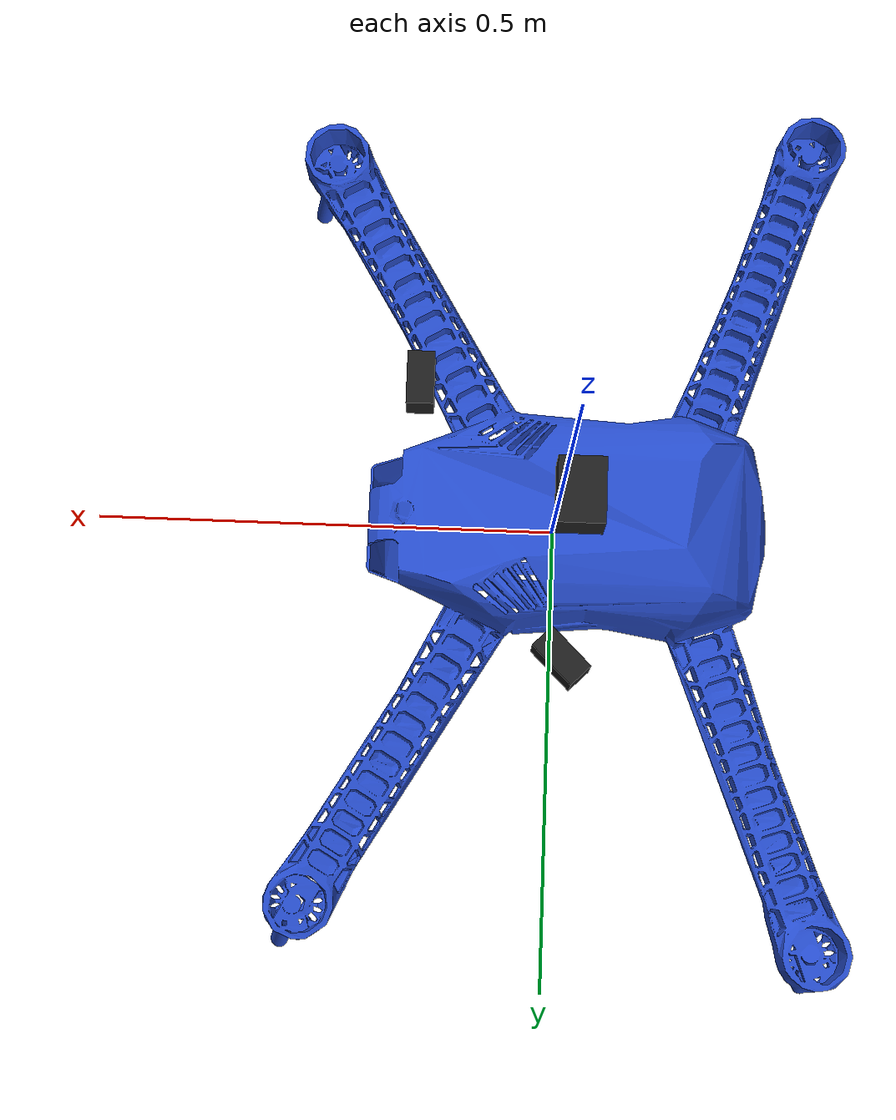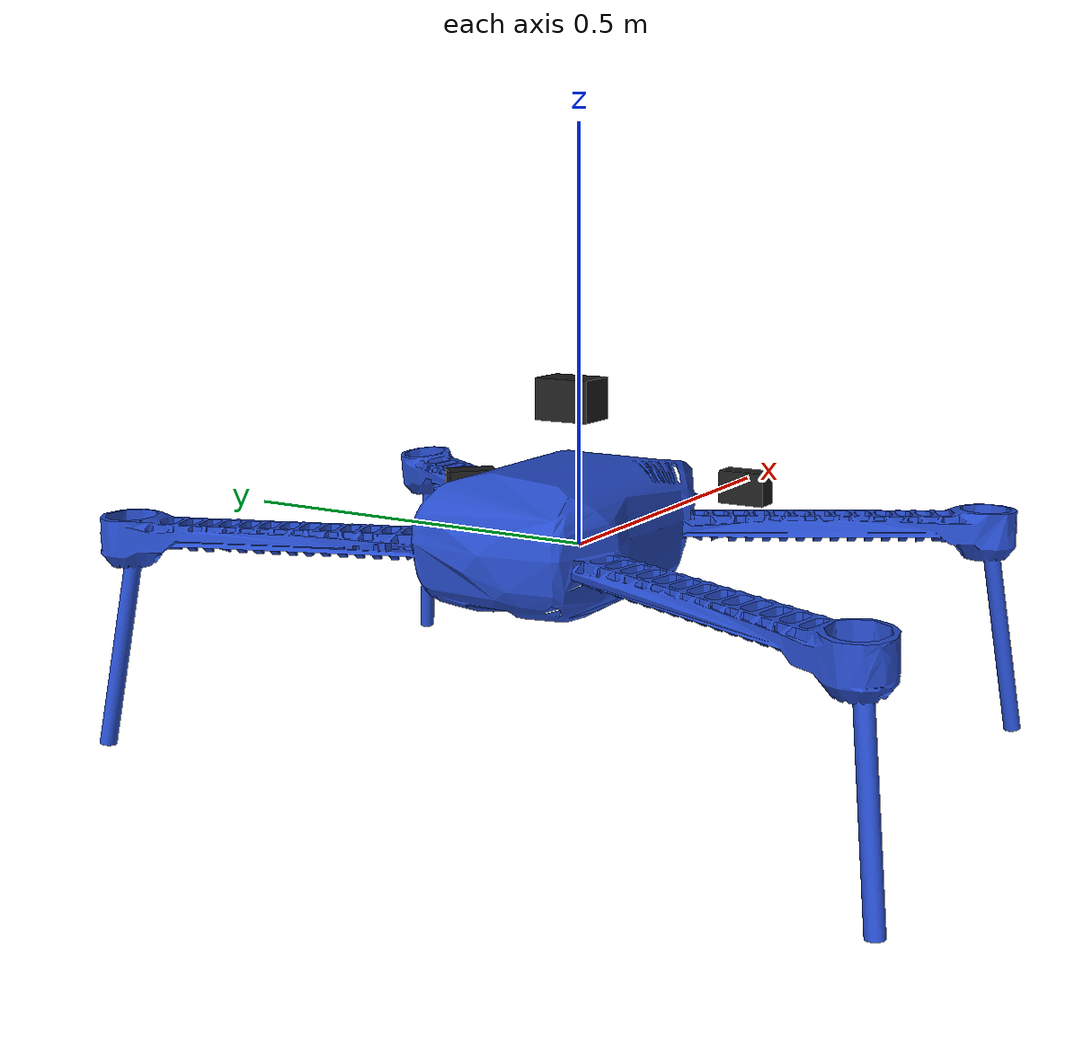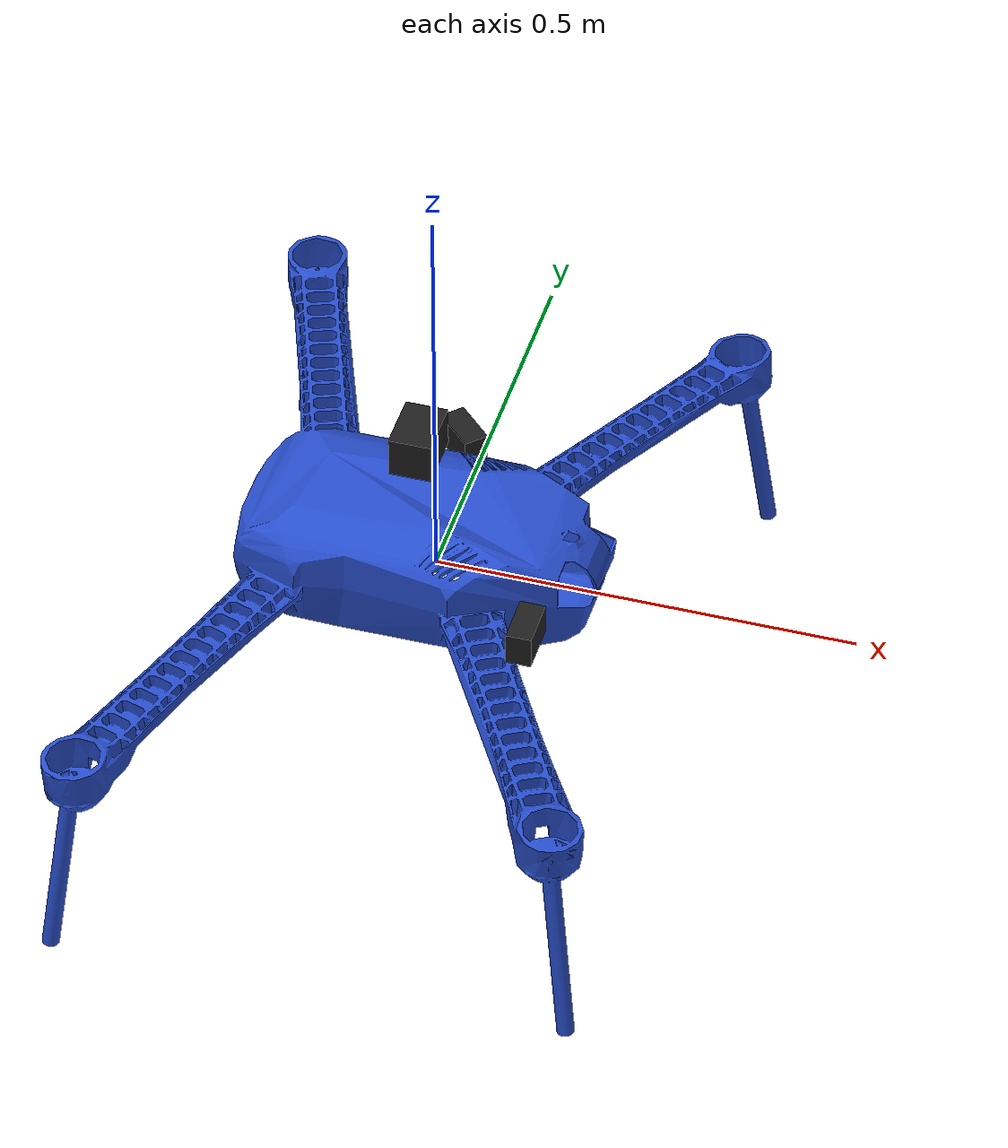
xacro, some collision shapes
<?xml version="1.0"?>
<robot
  name="iris"
  xmlns:xacro="http://ros.org/wiki/xacro"
>
	<link name="base_link">
		<collision name='body'>
			<geometry>
				<mesh filename="package://uri_gazebo/meshes/iris_collision.dae" scale="1 1 1" />
			</geometry>
		</collision>
		<visual name='body'>
			<geometry>
				<mesh filename="package://uri_gazebo/meshes/iris.dae" scale="1 1 1" />
			</geometry>
		</visual>
	</link>

	<gazebo reference="base_link">
		<material>URI/Blue</material>
	</gazebo>

  <!-- Asus Xiton Live Pro -->

  <!-- MAPIP cameras -->
	<xacro:include filename="generic_camera.urdf.xacro" />
	<xacro:generic_camera name="left_camera" parent="base_link" ros_topic="camera_image" cam_info_topic="camera_info" update_rate="30" res_x="4608" res_y="3456" image_format="R8G8B8" hfov="${0.6/M_PI * 180.0}">
		<origin xyz="-0.01 0.15 0.06" rpy="0 ${-M_PI/1000} ${M_PI/4}"/>
	</xacro:generic_camera>

	<xacro:generic_camera name="right_camera" parent="base_link" ros_topic="camera_image" cam_info_topic="camera_info" update_rate="30" res_x="4608" res_y="3456" image_format="R8G8B8" hfov="${0.6/M_PI * 180.0}">
		<origin xyz="0.15 -0.15 0.06" rpy="0.0 0.01 0.0"/>
	</xacro:generic_camera>

	<!-- Sonar Range Finder -->
	<xacro:include filename="sonar_sensor.urdf.xacro" />
	<xacro:sonar_sensor name="sonar" parent="base_link" ros_topic="sonar_distance" update_rate="40" min_range="0.01" max_range="25.0" field_of_view="0.01" ray_count="1">
		<origin xyz="-0.0 0.0 -0.07" rpy="0.1 ${M_PI/2} 0"/>
	</xacro:sonar_sensor>

	<!-- laser Range Finder -->
	<xacro:include filename="generic_laser.urdf.xacro" />
	<xacro:generic_laser
		name="hokuyo"
		parent="base_link"
		size_x="0.05" size_y="0.05" size_z="0.07"
		ros_topic="hokuyo"
		visualize_laser="true"
		update_rate="30"
		samples="1080"
		min_angle="-2.09439510239"
		max_angle="2.09439510239"
		range_min="0.1"
		range_max="10.0"
		range_res="0.01"
		noise_mean="0.0"
		noise_stddv="0.01">
		<origin xyz="-0.02 0.0 0.18" rpy="${M_PI/2} ${-M_PI/2} 0"/>
	</xacro:generic_laser>

</robot>

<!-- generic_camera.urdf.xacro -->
<robot xmlns:xacro="http://www.ros.org/wiki/xacro">

<xacro:property name="M_PI" value="3.1415926535897931" />

<xacro:macro name="generic_camera" params="name parent *origin ros_topic cam_info_topic update_rate res_x res_y image_format hfov">
	<joint name="${name}_joint" type="fixed">
		<xacro:insert_block name="origin" />
		<parent link="${parent}"/>
		<child link="${name}_link"/>
	</joint>

	<link name="${name}_link">
		<inertial>
			<mass value="0.001" />
			<origin xyz="0 0 0" rpy="0 0 0" />
			<inertia ixx="0.0001" ixy="0" ixz="0" iyy="0.0001" iyz="0" izz="0.0001" />
		</inertial>
		<visual>
			<origin xyz="0 0 0" rpy="0 0 0" />
			<geometry>
				<box size="0.030 0.059 0.041" />
			</geometry>
		</visual>
		<collision>
			<origin xyz="0 0 0" rpy="0 0 0" />
			<geometry>
				<box size="0.030 0.059 0.041" />
			</geometry>
		</collision>
	</link>

	<gazebo reference="${name}_link">
		<material>URI/Black</material>
		<sensor type="camera" name="${name}_camera_sensor">
			<update_rate>${update_rate}</update_rate>
			<camera>
				<horizontal_fov>${hfov * M_PI/180.0}</horizontal_fov>
				<image>
					<format>${image_format}</format>
					<width>${res_x}</width>
					<height>${res_y}</height>
				</image>
				<clip>
					<near>0.01</near>
					<far>100</far>
				</clip>
			</camera>

			<plugin name="${name}_camera_controller" filename="libgazebo_ros_camera.so">
				<cameraName>${name}</cameraName>
				<imageTopicName>${ros_topic}</imageTopicName>
				<cameraInfoTopicName>${cam_info_topic}</cameraInfoTopicName>
				<frameName>${name}_optical_frame</frameName>
			</plugin>
		</sensor>
	</gazebo>
</xacro:macro>

</robot>

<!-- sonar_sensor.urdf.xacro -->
<robot xmlns:xacro="http://www.ros.org/wiki/xacro">
<xacro:macro name="sonar_sensor" params="name parent *origin ros_topic update_rate min_range max_range field_of_view ray_count">
	<joint name="${name}_joint" type="fixed">
		<xacro:insert_block name="origin" />
		<parent link="${parent}"/>
		<child link="${name}_link"/>
	</joint>

	<link name="${name}_link">
		<inertial>
			<mass value="0.001" />
			<origin xyz="0 0 0" rpy="0 0 0" />
			<inertia ixx="0.000000017" ixy="0" ixz="0" iyy="0.000000017" iyz="0" izz="0.000000017" />
		</inertial>
		<visual>
			<origin xyz="0 0 0" rpy="0 0 0" />
			<geometry>
				<mesh filename="package://hector_sensors_description/meshes/sonar_sensor/max_sonar_ez4.dae"/>
			</geometry>
		</visual>
		<collision>
			<origin xyz="0 0 0" rpy="0 0 0" />
			<geometry>
				<box size="0.01 0.01 0.01" />
			</geometry>
		</collision>
	</link>

	<gazebo reference="${name}_link">
		<sensor type="ray" name="${name}">
			<always_on>true</always_on>
			<update_rate>${update_rate}</update_rate>
			<pose>0 0 0 0 0 0</pose>
			<visualize>false</visualize>
			<ray>
				<scan>
					<horizontal>
						<samples>${ray_count}</samples>
						<resolution>1</resolution>
						<min_angle>-${field_of_view/2}</min_angle>
						<max_angle> ${field_of_view/2}</max_angle>
					</horizontal>
					<vertical>
						<samples>${ray_count}</samples>
						<resolution>1</resolution>
						<min_angle>-${field_of_view/2}</min_angle>
						<max_angle> ${field_of_view/2}</max_angle>
					</vertical>
				</scan>
				<range>
					<min>${min_range}</min>
					<max>${max_range}</max>
					<resolution>0.01</resolution>
				</range>
			</ray>

			<plugin name="gazebo_ros_${name}_controller" filename="libhector_gazebo_ros_sonar.so">
				<gaussianNoise>0.005</gaussianNoise>
				<topicName>${ros_topic}</topicName>
				<frameId>${name}_link</frameId>
			</plugin>
		</sensor>
	</gazebo>
</xacro:macro>
</robot>

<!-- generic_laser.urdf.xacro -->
<robot xmlns:xacro="http://www.ros.org/wiki/xacro">

<xacro:property name="M_PI" value="3.1415926535897931" />

<xacro:macro name="generic_laser" params="name parent *origin
						 ros_topic
						 size_x size_y size_z
						 update_rate
						 samples
						 min_angle
						 max_angle
						 range_min
						 range_max
						 range_res
						 visualize_laser
						 noise_mean
						 noise_stddv">
	<joint name="${name}_joint" type="fixed">
		<xacro:insert_block name="origin" />
		<parent link="${parent}"/>
		<child link="${name}_link"/>
	</joint>

	<link name="${name}_link">
		<inertial>
			<mass value="0.001" />
			<origin xyz="0 0 0" rpy="0 0 0" />
			<inertia ixx="0.0001" ixy="0" ixz="0" iyy="0.0001" iyz="0" izz="0.0001" />
		</inertial>
		<visual>
			<origin xyz="0 0 0" rpy="0 0 0" />
			<geometry>
				<box size="${size_x} ${size_y} ${size_z}" />
			</geometry>
		</visual>
		<collision>
			<origin xyz="0 0 0" rpy="0 0 0" />
			<geometry>
				<box size="${size_x} ${size_y} ${size_z}" />
			</geometry>
		</collision>
	</link>

	<gazebo reference="${name}_link">
		<material>URI/Black</material>
    <sensor type="gpu_ray" name="head_hokuyo_sensor">
      <pose>0 0 0 0 0 0</pose>
      <visualize>${visualize_laser}</visualize>
      <update_rate>${update_rate}</update_rate>
      <ray>
        <scan>
          <horizontal>
            <samples>${samples}</samples>
            <resolution>1</resolution>
            <min_angle>${min_angle}</min_angle>
            <max_angle>${max_angle}</max_angle>
          </horizontal>
        </scan>
        <range>
          <min>${range_min}</min>
          <max>${range_max}</max>
          <resolution>${range_res}</resolution>
        </range>
        <noise>
          <type>gaussian</type>
          <mean>${noise_mean}</mean>
          <stddev>${noise_stddv}</stddev>
        </noise>
      </ray>
      <plugin name="gazebo_ros_head_hokuyo_controller" filename="libgazebo_ros_gpu_laser.so">
        <topicName>${ros_topic}</topicName>
        <frameName>${name}_link</frameName>
      </plugin>
    </sensor>
	</gazebo>
</xacro:macro>

</robot>
